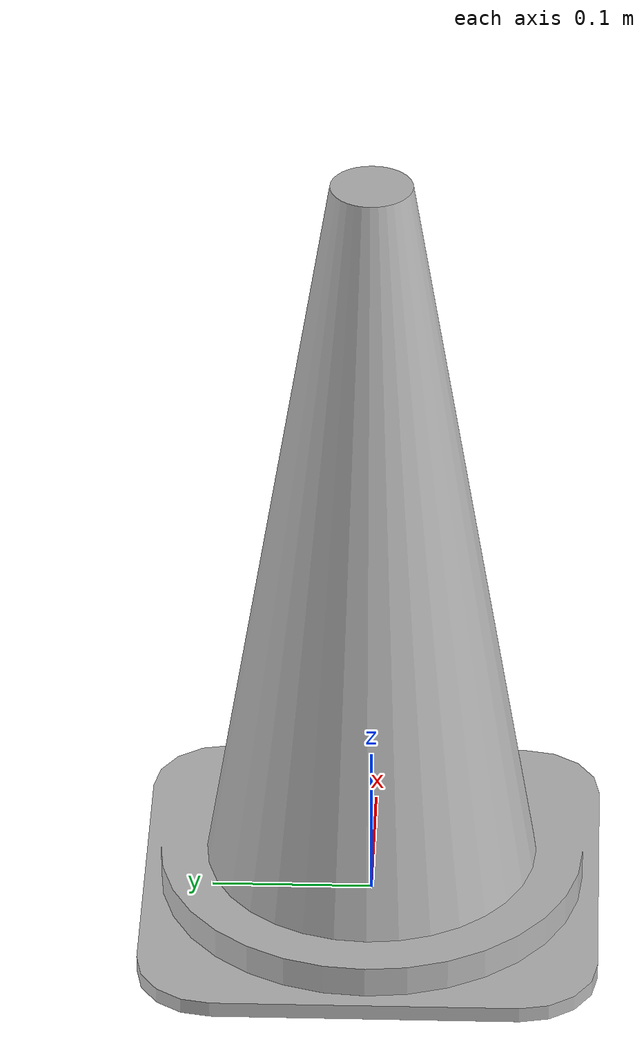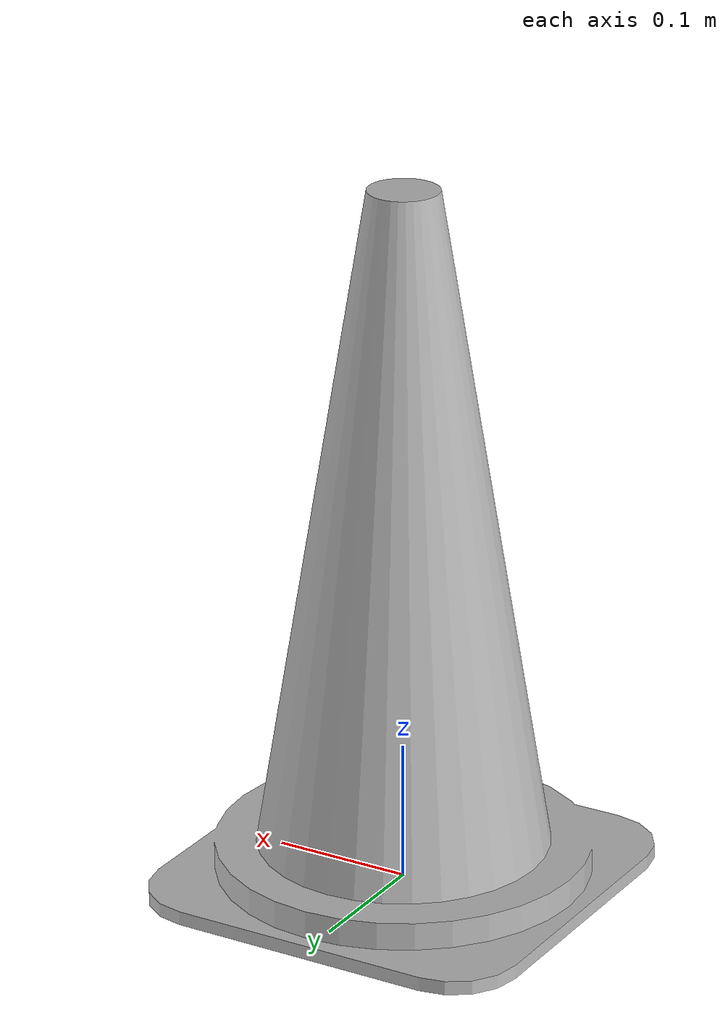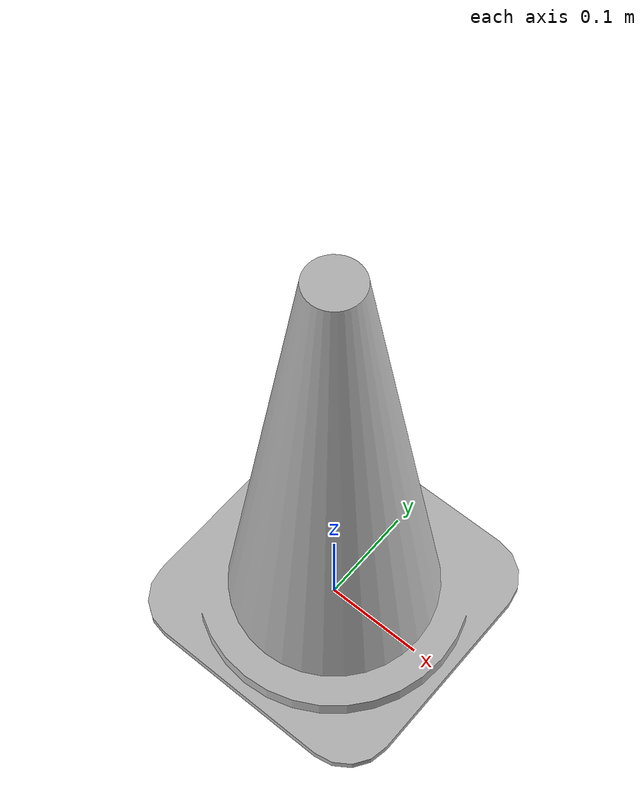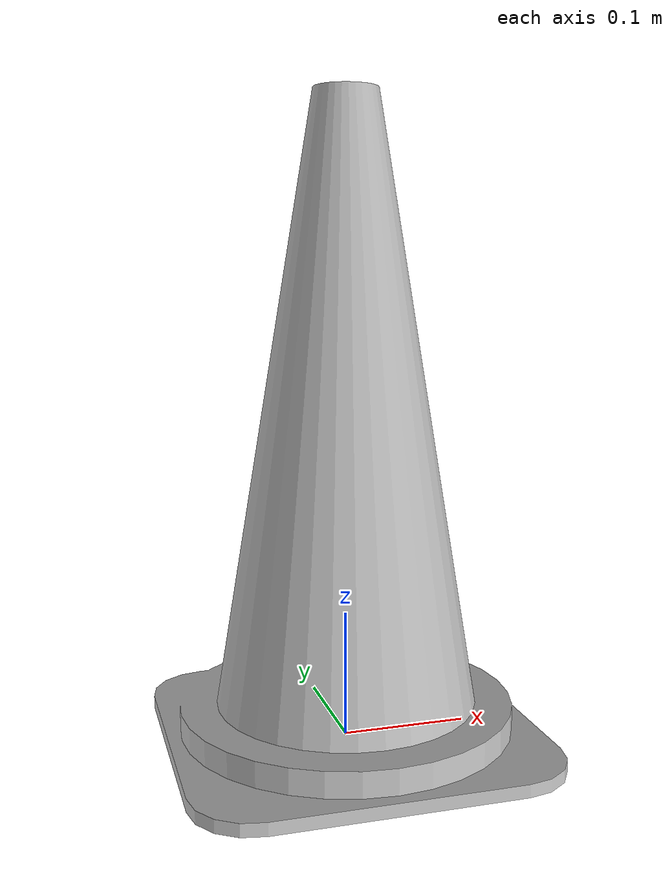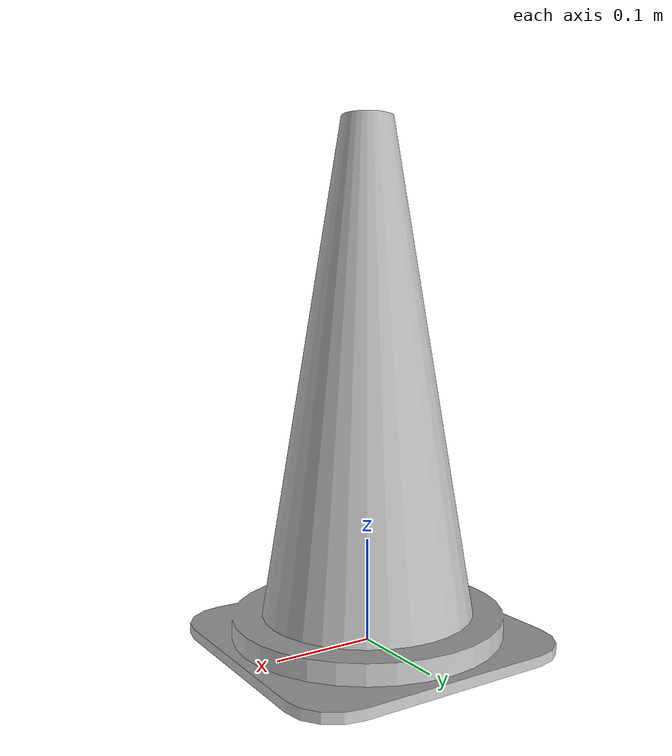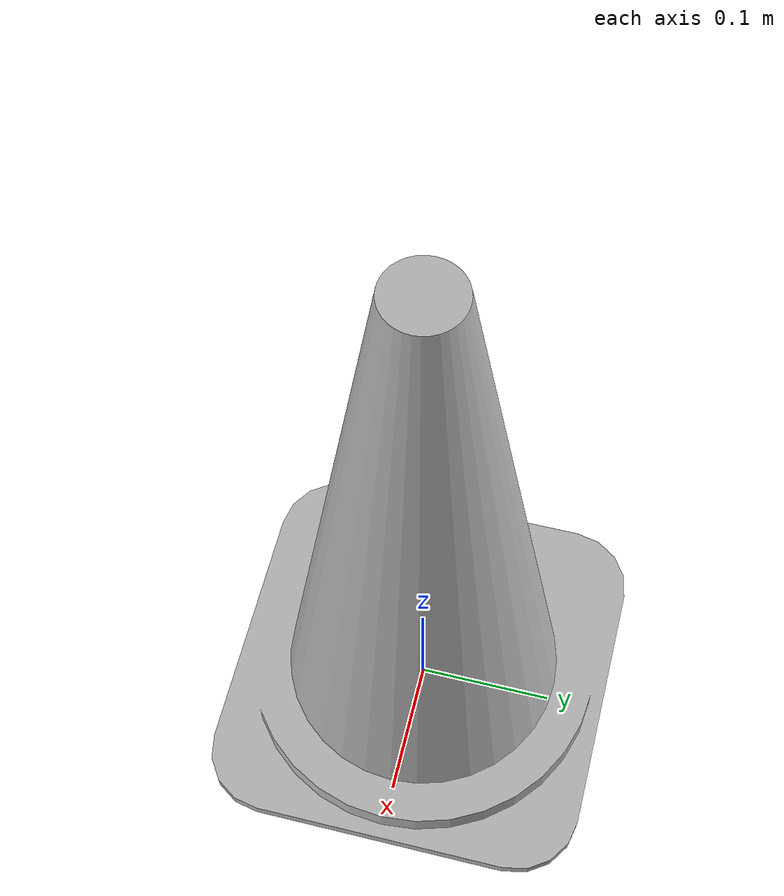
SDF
<?xml version='1.0'?>
<sdf version='1.4'>
  <model name="cone_orange_big">
    <link name="link">
    <collision name="collision"><geometry><box><size> 0.2 0.2 0.01</size>
             </box></geometry></collision>
      <visual name="visual">
        <geometry>
          <mesh>
            <uri>model://BigOrangeCone.dae</uri>
            <scale>1 1 1</scale>
          </mesh>
        </geometry>
        <material>
            <script>
              <uri>model://cone_orange_big/materials/scripts</uri>
              <uri>model://cone_orange_big/materials/textures</uri>
              <name>cone_orange_big/Image</name>
            </script>
        </material>
      </visual>
    </link>
  </model>
</sdf>
